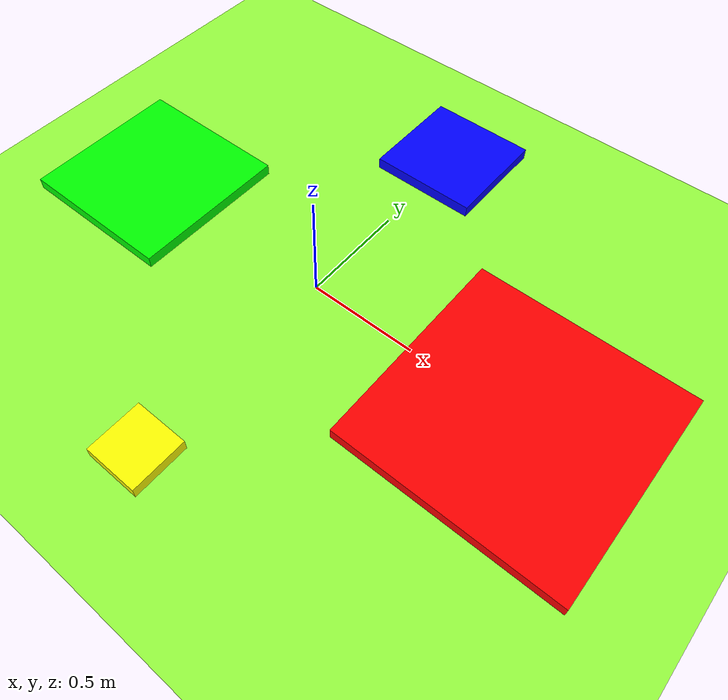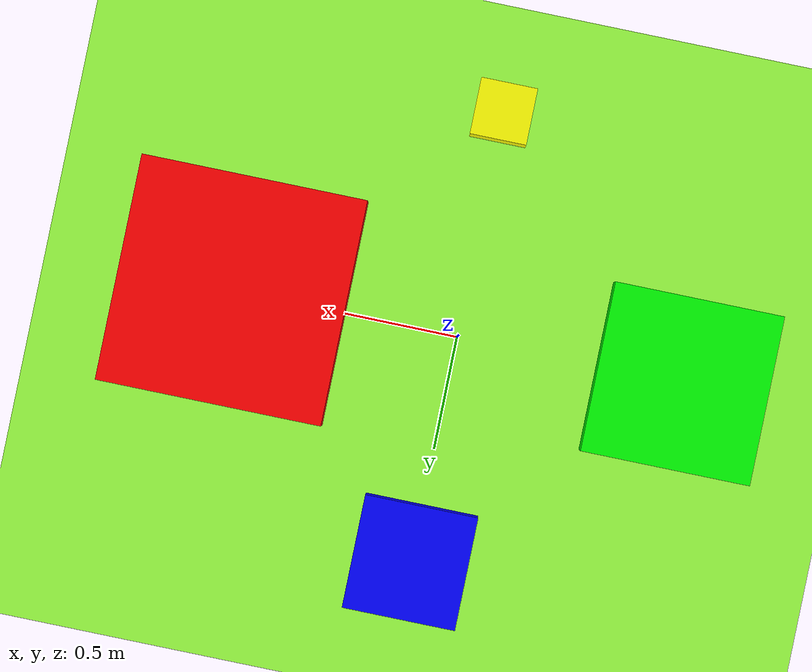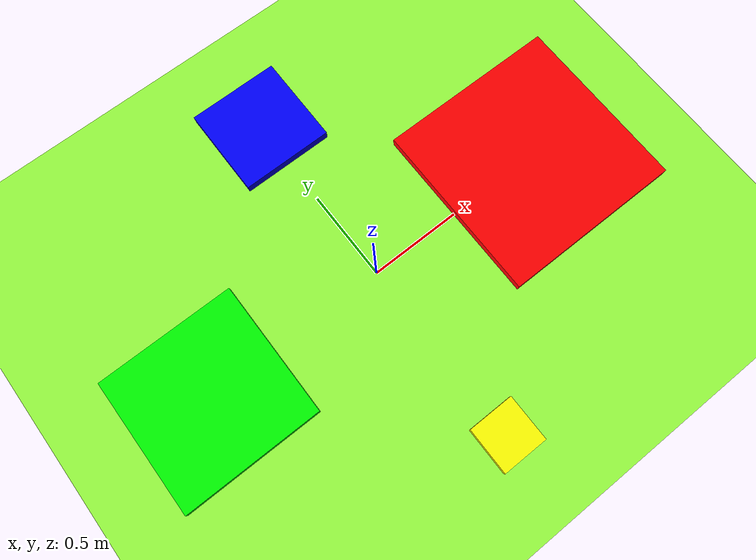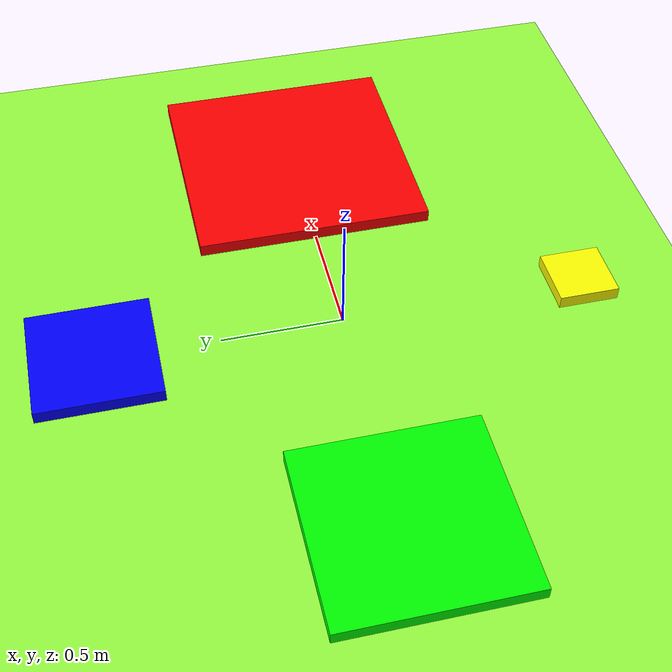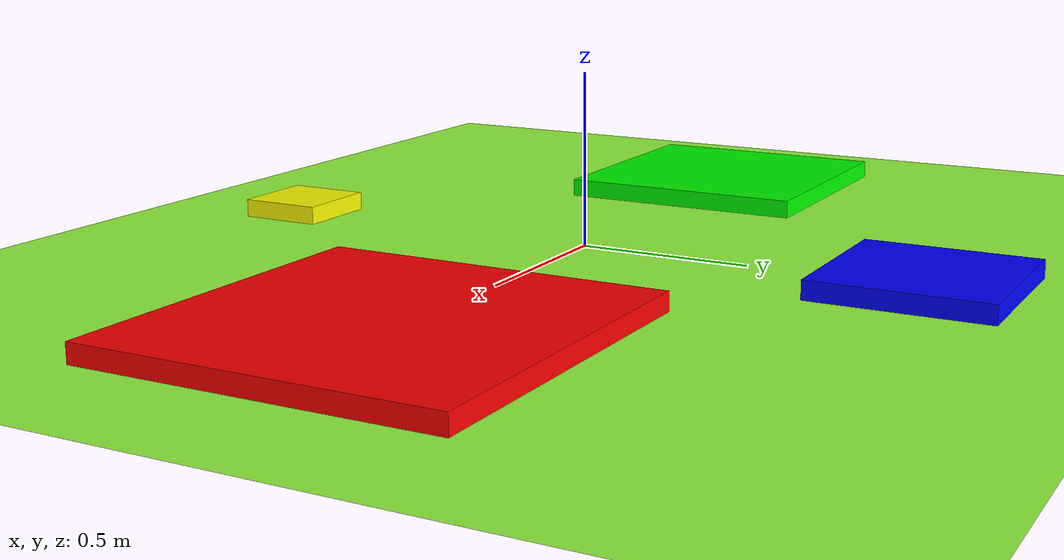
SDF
<sdf version="1.9">
 <world name="lawn">
  <physics type="ode">
   <max_step_size>0.004</max_step_size>
   <real_time_factor>1.0</real_time_factor>
   <real_time_update_rate>250</real_time_update_rate>
  </physics>
  <gravity>0 0 -9.8</gravity>
  <magnetic_field>6e-06 2.3e-05 -4.2e-05</magnetic_field>
  <atmosphere type="adiabatic"/>
  <scene>
   <sky><clouds><speed>12</speed></clouds></sky>
   <grid>true</grid>
   <ambient>0.5 0.5 0.5 0.3</ambient>
   <background>0.3 0.3 0.3 0.3</background>
   <shadows>true</shadows>
  </scene>
  <model name="ground_plane">
   <static>true</static>
   <link name="link">
    <collision name="collision">
     <geometry><plane><normal>0 0 1</normal><size>1 1</size></plane></geometry>
     <surface>
      <friction><ode><mu>0.6</mu><mu2>0.6</mu2></ode></friction>
      <contact><collide_bitmask>65535</collide_bitmask><ode><min_depth>0.005</min_depth><kp>1e8</kp></ode></contact>
     </surface>
    </collision>
    <visual name="visual">
     <cast_shadows>false</cast_shadows>
     <geometry><plane><normal>0 0 1</normal><size>400 400</size></plane></geometry>
     <material>
      <diffuse>0.6 1.0 0.25 0.5</diffuse>
      <specular>0 0 0 0</specular>
      <emissive>0 0 0 0</emissive>
     </material>
    </visual>
    <inertial>
     <mass>1</mass>
     <inertia><ixx>1</ixx><ixy>0</ixy><ixz>0</ixz><iyy>1</iyy><iyz>0</iyz><izz>1</izz></inertia>
    </inertial>
   </link>
  </model>
  <light name="sunUTC" type="directional">
   <pose>0 0 500 0 -0 0</pose>
   <intensity>1</intensity>
   <direction>0.001 0.625 -0.78</direction>
   <diffuse>0.904 0.904 0.904 1</diffuse>
   <specular>0.271 0.271 0.271 1</specular>
   <attenuation><range>2000</range><linear>0</linear><constant>1</constant><quadratic>0</quadratic></attenuation>
   <spot><inner_angle>0</inner_angle><outer_angle>0</outer_angle><falloff>0</falloff></spot>
  </light>
  <model name="landing_box_1">
   <static>true</static>
   <pose>1 0 0 0 0 0</pose>
   <link name="link">
    <collision name="collision">
     <geometry><box><size>1 1 0.1</size></box></geometry>
     <surface><friction><ode><mu>0.6</mu><mu2>0.6</mu2></ode></friction></surface>
    </collision>
    <visual name="visual">
     <geometry><box><size>1 1 0.1</size></box></geometry>
     <material><ambient>1 0 0 1</ambient><diffuse>1 0 0 1</diffuse><specular>0.2 0.2 0.2 1</specular></material>
    </visual>
    <inertial>
     <mass>10</mass>
     <inertia><ixx>0.833</ixx><ixy>0</ixy><ixz>0</ixz><iyy>0.833</iyy><iyz>0</iyz><izz>0.833</izz></inertia>
    </inertial>
   </link>
  </model>
  <model name="landing_box_2">
   <static>true</static>
   <pose>-1 0 0 0 0 0</pose>
   <link name="link">
    <collision name="collision">
     <geometry><box><size>0.75 0.75 0.1</size></box></geometry>
     <surface><friction><ode><mu>0.6</mu><mu2>0.6</mu2></ode></friction></surface>
    </collision>
    <visual name="visual">
     <geometry><box><size>0.75 0.75 0.1</size></box></geometry>
     <material><ambient>0 1 0 1</ambient><diffuse>0 1 0 1</diffuse><specular>0.2 0.2 0.2 1</specular></material>
    </visual>
    <inertial>
     <mass>5</mass>
     <inertia><ixx>0.260</ixx><ixy>0</ixy><ixz>0</ixz><iyy>0.260</iyy><iyz>0</iyz><izz>0.260</izz></inertia>
    </inertial>
   </link>
  </model>
  <model name="landing_box_3">
   <static>true</static>
   <pose>0 1 0 0 0 0</pose>
   <link name="link">
    <collision name="collision">
     <geometry><box><size>0.5 0.5 0.1</size></box></geometry>
     <surface><friction><ode><mu>0.6</mu><mu2>0.6</mu2></ode></friction></surface>
    </collision>
    <visual name="visual">
     <geometry><box><size>0.5 0.5 0.1</size></box></geometry>
     <material><ambient>0 0 1 1</ambient><diffuse>0 0 1 1</diffuse><specular>0.2 0.2 0.2 1</specular></material>
    </visual>
    <inertial>
     <mass>2</mass>
     <inertia><ixx>0.0417</ixx><ixy>0</ixy><ixz>0</ixz><iyy>0.0417</iyy><iyz>0</iyz><izz>0.0417</izz></inertia>
    </inertial>
   </link>
  </model>
  <model name="landing_box_4">
   <static>true</static>
   <pose>0 -1 0 0 0 0</pose>
   <link name="link">
    <collision name="collision">
     <geometry><box><size>0.25 0.25 0.1</size></box></geometry>
     <surface><friction><ode><mu>0.6</mu><mu2>0.6</mu2></ode></friction></surface>
    </collision>
    <visual name="visual">
     <geometry><box><size>0.25 0.25 0.1</size></box></geometry>
     <material><ambient>1 1 0 1</ambient><diffuse>1 1 0 1</diffuse><specular>0.2 0.2 0.2 1</specular></material>
    </visual>
    <inertial>
     <mass>1</mass>
     <inertia><ixx>0.0052</ixx><ixy>0</ixy><ixz>0</ixz><iyy>0.0052</iyy><iyz>0</iyz><izz>0.0052</izz></inertia>
    </inertial>
   </link>
  </model>
  <spherical_coordinates>
   <surface_model>EARTH_WGS84</surface_model>
   <world_frame_orientation>ENU</world_frame_orientation>
   <latitude_deg>47.397971057728974</latitude_deg>
   <longitude_deg>8.546163739800146</longitude_deg>
   <elevation>0</elevation>
  </spherical_coordinates>
 </world>
</sdf>
